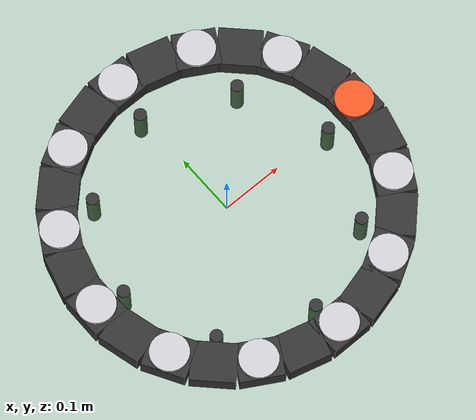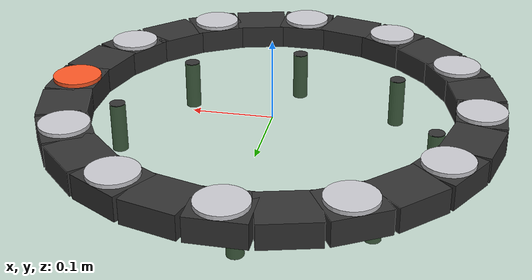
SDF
<sdf version="1.6">
 <world name="quadcopter">
  <physics name="1ms" type="ignored">
   <max_step_size>0.001</max_step_size>
   <real_time_factor>1.0</real_time_factor>
   <real_time_update_rate>500</real_time_update_rate>
  </physics>
  <plugin filename="ignition-gazebo-physics-system" name="gz::sim::systems::Physics"/>
  <plugin filename="ignition-gazebo-scene-broadcaster-system" name="gz::sim::systems::SceneBroadcaster"/>
  <plugin filename="ignition-gazebo-user-commands-system" name="gz::sim::systems::UserCommands"/>
  <scene><background>0.6 0.8 1.0 1</background><ambient>0.5 0.5 0.5 1</ambient></scene>
  <light type="directional" name="sun">
   <pose>0 0 10 0 0 0</pose>
   <diffuse>0.8 0.8 0.8 1</diffuse>
   <specular>0.2 0.2 0.2 1</specular>
   <attenuation>
    <range>1000</range>
    <constant>0.9</constant>
    <linear>0.01</linear>
    <quadratic>0.001</quadratic>
   </attenuation>
   <direction>-0.5 0.1 -0.9</direction>
  </light>
  <include>
   <uri>m2a_ring_fixture.sdf</uri>
   <pose>0 0 0.035 0 0 0</pose>
   <plugin filename="gz-sim-pose-publisher-system" name="gz::sim::systems::PosePublisher">
    <publish_link_pose>true</publish_link_pose>
    <publish_model_pose>true</publish_model_pose>
    <publish_nested_model_pose>true</publish_nested_model_pose>
    <use_pose_vector_msg>true</use_pose_vector_msg>
    <update_frequency>500</update_frequency>
   </plugin>
  </include>
  <model name="floor">
   <static>true</static>
   <link name="link">
    <collision name="col">
     <geometry><plane><normal>0 0 1</normal><size>100 100</size></plane></geometry>
    </collision>
    <visual name="vis">
     <geometry><plane><normal>0 0 1</normal><size>100 100</size></plane></geometry>
     <material>
      <ambient>0.2 0.5 0.2 1</ambient>
      <diffuse>0.3 0.6 0.3 1</diffuse>
      <specular>0.05 0.05 0.05 1</specular>
     </material>
    </visual>
   </link>
  </model>
 </world>
</sdf>
